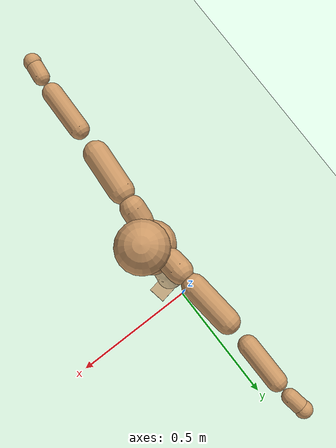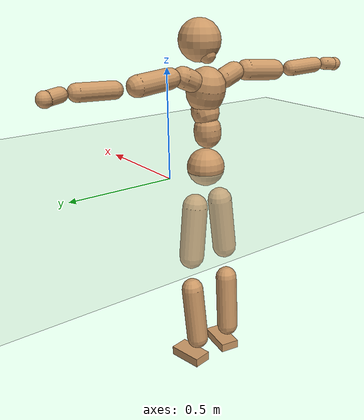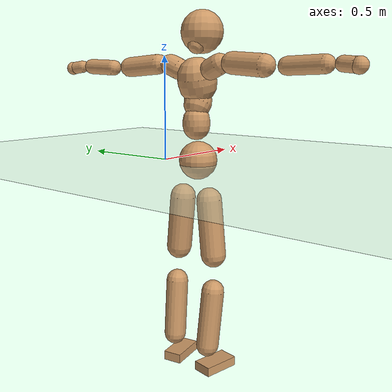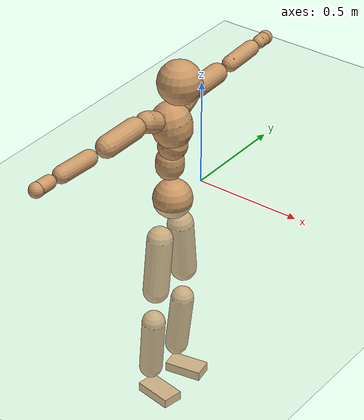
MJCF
<mujoco model="humanoid">
  <compiler coordinate="local" angle="radian"/>
  <default>
    <joint damping="0.0" armature="0.01" stiffness="0.0" limited="true"/>
    <geom conaffinity="1" condim="3" contype="7" margin="0.001" rgba="0.8 0.6 .4 1"/>
  </default>
  <asset>
    <texture type="skybox" builtin="gradient" rgb1=".4 .5 .6" rgb2="0 0 0" width="100" height="100"/>
    <texture builtin="flat" height="1278" mark="cross" markrgb="1 1 1" name="texgeom" random="0.01" rgb1="0.8 0.6 0.4" rgb2="0.8 0.6 0.4" type="cube" width="127"/>
    <texture builtin="checker" height="100" name="texplane" rgb1="0 0 0" rgb2="0.8 0.8 0.8" type="2d" width="100"/>
    <material name="MatPlane" reflectance="0.5" shininess="1" specular="1" texrepeat="60 60" texture="texplane"/>
    <material name="geom" texture="texgeom" texuniform="true"/>
  </asset>
  <worldbody>
    <light cutoff="100" diffuse="1 1 1" dir="-0 0 -1.3" directional="true" exponent="1" pos="0 0 1.3" specular=".1 .1 .1"/>
    <geom conaffinity="1" condim="3" name="floor" pos="0 0 0" rgba="0.8 0.9 0.8 1" size="100 100 .2" type="plane" material="MatPlane"/>
    <body name="Pelvis" pos="-0.001 -0.2063 0.0169">
      <freejoint name="Pelvis"/>
      <geom type="sphere" contype="1" conaffinity="1" density="500" size="0.0901" pos="0.0000 0.0000 0.0000" name="Pelvis"/>
      <body name="L_Hip" pos="-0.0167 0.0699 -0.0939">
        <joint name="L_Hip_x" type="hinge" pos="0 0 0" axis="1 0 0" stiffness="800" damping="80" armature="0.02" range="-180.0000 180.0000"/>
        <joint name="L_Hip_y" type="hinge" pos="0 0 0" axis="0 1 0" stiffness="800" damping="80" armature="0.02" range="-180.0000 180.0000"/>
        <joint name="L_Hip_z" type="hinge" pos="0 0 0" axis="0 0 1" stiffness="800" damping="80" armature="0.02" range="-180.0000 180.0000"/>
        <geom type="capsule" contype="1" conaffinity="1" density="500" fromto="-0.0001 0.0084 -0.0857 -0.0003 0.0335 -0.3427" size="0.0604" name="L_Hip"/>
        <body name="L_Knee" pos="-0.0004 0.0419 -0.4284">
          <joint name="L_Knee_x" type="hinge" pos="0 0 0" axis="1 0 0" stiffness="800" damping="80" armature="0.02" range="-180.0000 180.0000"/>
          <joint name="L_Knee_y" type="hinge" pos="0 0 0" axis="0 1 0" stiffness="800" damping="80" armature="0.02" range="-180.0000 180.0000"/>
          <joint name="L_Knee_z" type="hinge" pos="0 0 0" axis="0 0 1" stiffness="800" damping="80" armature="0.02" range="-180.0000 180.0000"/>
          <geom type="capsule" contype="1" conaffinity="1" density="500" fromto="-0.0095 -0.0028 -0.0911 -0.0378 -0.0112 -0.3643" size="0.0537" name="L_Knee"/>
          <body name="L_Ankle" pos="-0.0473 -0.014 -0.4554">
            <joint name="L_Ankle_x" type="hinge" pos="0 0 0" axis="1 0 0" stiffness="800" damping="80" armature="0.02" range="-180.0000 180.0000"/>
            <joint name="L_Ankle_y" type="hinge" pos="0 0 0" axis="0 1 0" stiffness="800" damping="80" armature="0.02" range="-180.0000 180.0000"/>
            <joint name="L_Ankle_z" type="hinge" pos="0 0 0" axis="0 0 1" stiffness="800" damping="80" armature="0.02" range="-180.0000 180.0000"/>
            <geom type="box" contype="1" conaffinity="1" density="500" pos="0.0628 0.0109 -0.0313" size="0.0876 0.0454 0.0226" quat="0.9963 0.0000 0.0000 0.0859" name="L_Ankle"/>
            <body name="L_Toe" pos="0.1256 0.0218 -0.0626">
              <joint name="L_Toe_x" type="hinge" pos="0 0 0" axis="1 0 0" stiffness="500" damping="50" armature="0.02" range="-180.0000 180.0000"/>
              <joint name="L_Toe_y" type="hinge" pos="0 0 0" axis="0 1 0" stiffness="500" damping="50" armature="0.02" range="-180.0000 180.0000"/>
              <joint name="L_Toe_z" type="hinge" pos="0 0 0" axis="0 0 1" stiffness="500" damping="50" armature="0.02" range="-180.0000 180.0000"/>
              <geom type="box" contype="1" conaffinity="1" density="500" pos="0.0000 0.0000 0.0306" size="0.0009 0.0023 0.0011" quat="0.9957 0.0000 0.0000 0.0921" name="L_Toe"/>
            </body>
          </body>
        </body>
      </body>
      <body name="R_Hip" pos="-0.0115 -0.0671 -0.0925">
        <joint name="R_Hip_x" type="hinge" pos="0 0 0" axis="1 0 0" stiffness="800" damping="80" armature="0.02" range="-180.0000 180.0000"/>
        <joint name="R_Hip_y" type="hinge" pos="0 0 0" axis="0 1 0" stiffness="800" damping="80" armature="0.02" range="-180.0000 180.0000"/>
        <joint name="R_Hip_z" type="hinge" pos="0 0 0" axis="0 0 1" stiffness="800" damping="80" armature="0.02" range="-180.0000 180.0000"/>
        <geom type="capsule" contype="1" conaffinity="1" density="500" fromto="-0.0008 -0.0098 -0.0872 -0.0031 -0.0391 -0.3487" size="0.0594" name="R_Hip"/>
        <body name="R_Knee" pos="-0.0039 -0.0489 -0.4359">
          <joint name="R_Knee_x" type="hinge" pos="0 0 0" axis="1 0 0" stiffness="800" damping="80" armature="0.02" range="-180.0000 180.0000"/>
          <joint name="R_Knee_y" type="hinge" pos="0 0 0" axis="0 1 0" stiffness="800" damping="80" armature="0.02" range="-180.0000 180.0000"/>
          <joint name="R_Knee_z" type="hinge" pos="0 0 0" axis="0 0 1" stiffness="800" damping="80" armature="0.02" range="-180.0000 180.0000"/>
          <geom type="capsule" contype="1" conaffinity="1" density="500" fromto="-0.0088 0.0036 -0.0909 -0.0353 0.0142 -0.3637" size="0.054" name="R_Knee"/>
          <body name="R_Ankle" pos="-0.0441 0.0178 -0.4547">
            <joint name="R_Ankle_x" type="hinge" pos="0 0 0" axis="1 0 0" stiffness="800" damping="80" armature="0.02" range="-180.0000 180.0000"/>
            <joint name="R_Ankle_y" type="hinge" pos="0 0 0" axis="0 1 0" stiffness="800" damping="80" armature="0.02" range="-180.0000 180.0000"/>
            <joint name="R_Ankle_z" type="hinge" pos="0 0 0" axis="0 0 1" stiffness="800" damping="80" armature="0.02" range="-180.0000 180.0000"/>
            <geom type="box" contype="1" conaffinity="1" density="500" pos="0.0646 -0.0114 -0.0269" size="0.0902 0.0478 0.0219" quat="0.9962 0.0000 0.0000 -0.0869" name="R_Ankle"/>
            <body name="R_Toe" pos="0.1293 -0.0227 -0.0537">
              <joint name="R_Toe_x" type="hinge" pos="0 0 0" axis="1 0 0" stiffness="500" damping="50" armature="0.02" range="-180.0000 180.0000"/>
              <joint name="R_Toe_y" type="hinge" pos="0 0 0" axis="0 1 0" stiffness="500" damping="50" armature="0.02" range="-180.0000 180.0000"/>
              <joint name="R_Toe_z" type="hinge" pos="0 0 0" axis="0 0 1" stiffness="500" damping="50" armature="0.02" range="-180.0000 180.0000"/>
              <geom type="box" contype="1" conaffinity="1" density="500" pos="0.0000 0.0000 0.0293" size="0.0009 0.0023 0.0012" quat="0.9969 0.0000 0.0000 -0.0782" name="R_Toe"/>
            </body>
          </body>
        </body>
      </body>
      <body name="Torso" pos="-0.0148 -0.0029 0.1073">
        <joint name="Torso_x" type="hinge" pos="0 0 0" axis="1 0 0" stiffness="1000" damping="100" armature="0.02" range="-180.0000 180.0000"/>
        <joint name="Torso_y" type="hinge" pos="0 0 0" axis="0 1 0" stiffness="1000" damping="100" armature="0.02" range="-180.0000 180.0000"/>
        <joint name="Torso_z" type="hinge" pos="0 0 0" axis="0 0 1" stiffness="1000" damping="100" armature="0.02" range="-180.0000 180.0000"/>
        <geom type="capsule" contype="1" conaffinity="1" density="500" fromto="0.0009 0.0024 0.0814 0.0006 0.0016 0.0543" size="0.0639" name="Torso"/>
        <body name="Spine" pos="0.0015 0.0041 0.1357">
          <joint name="Spine_x" type="hinge" pos="0 0 0" axis="1 0 0" stiffness="1000" damping="100" armature="0.02" range="-180.0000 180.0000"/>
          <joint name="Spine_y" type="hinge" pos="0 0 0" axis="0 1 0" stiffness="1000" damping="100" armature="0.02" range="-180.0000 180.0000"/>
          <joint name="Spine_z" type="hinge" pos="0 0 0" axis="0 0 1" stiffness="1000" damping="100" armature="0.02" range="-180.0000 180.0000"/>
          <geom type="capsule" contype="1" conaffinity="1" density="500" fromto="0.0153 0.0010 0.0305 0.0102 0.0007 0.0203" size="0.065" name="Spine"/>
          <body name="Chest" pos="0.0256 0.0016 0.0508">
            <joint name="Chest_x" type="hinge" pos="0 0 0" axis="1 0 0" stiffness="1000" damping="100" armature="0.02" range="-180.0000 180.0000"/>
            <joint name="Chest_y" type="hinge" pos="0 0 0" axis="0 1 0" stiffness="1000" damping="100" armature="0.02" range="-180.0000 180.0000"/>
            <joint name="Chest_z" type="hinge" pos="0 0 0" axis="0 0 1" stiffness="1000" damping="100" armature="0.02" range="-180.0000 180.0000"/>
            <geom type="capsule" contype="1" conaffinity="1" density="500" fromto="-0.0220 -0.0013 0.0901 -0.0147 -0.0008 0.0601" size="0.0902" name="Chest"/>
            <body name="Neck" pos="-0.0374 -0.0042 0.2173">
              <joint name="Neck_x" type="hinge" pos="0 0 0" axis="1 0 0" stiffness="500" damping="50" armature="0.02" range="-180.0000 180.0000"/>
              <joint name="Neck_y" type="hinge" pos="0 0 0" axis="0 1 0" stiffness="500" damping="50" armature="0.02" range="-180.0000 180.0000"/>
              <joint name="Neck_z" type="hinge" pos="0 0 0" axis="0 0 1" stiffness="500" damping="50" armature="0.02" range="-180.0000 180.0000"/>
              <geom type="capsule" contype="1" conaffinity="1" density="500" fromto="0.0116 0.0013 0.0148 0.0465 0.0052 0.0593" size="0.0405" name="Neck"/>
              <body name="Head" pos="0.0581 0.0065 0.0742">
                <joint name="Head_x" type="hinge" pos="0 0 0" axis="1 0 0" stiffness="500" damping="50" armature="0.02" range="-180.0000 180.0000"/>
                <joint name="Head_y" type="hinge" pos="0 0 0" axis="0 1 0" stiffness="500" damping="50" armature="0.02" range="-180.0000 180.0000"/>
                <joint name="Head_z" type="hinge" pos="0 0 0" axis="0 0 1" stiffness="500" damping="50" armature="0.02" range="-180.0000 180.0000"/>
                <geom type="sphere" contype="1" conaffinity="1" density="500" size="0.0981" pos="0.0000 0.0000 0.0000" name="Head"/>
              </body>
            </body>
            <body name="L_Thorax" pos="-0.0341 0.0734 0.1175">
              <joint name="L_Thorax_x" type="hinge" pos="0 0 0" axis="1 0 0" stiffness="500" damping="50" armature="0.02" range="-180.0000 180.0000"/>
              <joint name="L_Thorax_y" type="hinge" pos="0 0 0" axis="0 1 0" stiffness="500" damping="50" armature="0.02" range="-180.0000 180.0000"/>
              <joint name="L_Thorax_z" type="hinge" pos="0 0 0" axis="0 0 1" stiffness="500" damping="50" armature="0.02" range="-180.0000 180.0000"/>
              <geom type="capsule" contype="1" conaffinity="1" density="500" fromto="-0.0010 0.0166 0.0071 -0.0040 0.0664 0.0285" size="0.0487" name="L_Thorax"/>
              <body name="L_Shoulder" pos="-0.005 0.0831 0.0356">
                <joint name="L_Shoulder_x" type="hinge" pos="0 0 0" axis="1 0 0" stiffness="500" damping="50" armature="0.02" range="-720.0000 720.0000"/>
                <joint name="L_Shoulder_y" type="hinge" pos="0 0 0" axis="0 1 0" stiffness="500" damping="50" armature="0.02" range="-720.0000 720.0000"/>
                <joint name="L_Shoulder_z" type="hinge" pos="0 0 0" axis="0 0 1" stiffness="500" damping="50" armature="0.02" range="-720.0000 720.0000"/>
                <geom type="capsule" contype="1" conaffinity="1" density="500" fromto="-0.0057 0.0570 -0.0042 -0.0228 0.2282 -0.0168" size="0.0468" name="L_Shoulder"/>
                <body name="L_Elbow" pos="-0.0285 0.2852 -0.0211">
                  <joint name="L_Elbow_x" type="hinge" pos="0 0 0" axis="1 0 0" stiffness="500" damping="50" armature="0.02" range="-720.0000 720.0000"/>
                  <joint name="L_Elbow_y" type="hinge" pos="0 0 0" axis="0 1 0" stiffness="500" damping="50" armature="0.02" range="-720.0000 720.0000"/>
                  <joint name="L_Elbow_z" type="hinge" pos="0 0 0" axis="0 0 1" stiffness="500" damping="50" armature="0.02" range="-720.0000 720.0000"/>
                  <geom type="capsule" contype="1" conaffinity="1" density="500" fromto="-0.0003 0.0535 0.0024 -0.0013 0.2140 0.0097" size="0.0374" name="L_Elbow"/>
                  <body name="L_Wrist" pos="-0.0016 0.2674 0.0121">
                    <joint name="L_Wrist_x" type="hinge" pos="0 0 0" axis="1 0 0" stiffness="300" damping="30" armature="0.02" range="-180.0000 180.0000"/>
                    <joint name="L_Wrist_y" type="hinge" pos="0 0 0" axis="0 1 0" stiffness="300" damping="30" armature="0.02" range="-180.0000 180.0000"/>
                    <joint name="L_Wrist_z" type="hinge" pos="0 0 0" axis="0 0 1" stiffness="300" damping="30" armature="0.02" range="-180.0000 180.0000"/>
                    <geom type="capsule" contype="1" conaffinity="1" density="500" fromto="-0.0028 0.0164 -0.0021 -0.0112 0.0658 -0.0083" size="0.0304" name="L_Wrist"/>
                    <body name="L_Hand" pos="-0.014 0.0822 -0.0103">
                      <joint name="L_Hand_x" type="hinge" pos="0 0 0" axis="1 0 0" stiffness="300" damping="30" armature="0.02" range="-180.0000 180.0000"/>
                      <joint name="L_Hand_y" type="hinge" pos="0 0 0" axis="0 1 0" stiffness="300" damping="30" armature="0.02" range="-180.0000 180.0000"/>
                      <joint name="L_Hand_z" type="hinge" pos="0 0 0" axis="0 0 1" stiffness="300" damping="30" armature="0.02" range="-180.0000 180.0000"/>
                      <geom type="sphere" contype="1" conaffinity="1" density="500" size="0.0329" pos="0.0000 0.0000 0.0000" name="L_Hand"/>
                    </body>
                  </body>
                </body>
              </body>
            </body>
            <body name="R_Thorax" pos="-0.0385 -0.0755 0.1158">
              <joint name="R_Thorax_x" type="hinge" pos="0 0 0" axis="1 0 0" stiffness="500" damping="50" armature="0.02" range="-180.0000 180.0000"/>
              <joint name="R_Thorax_y" type="hinge" pos="0 0 0" axis="0 1 0" stiffness="500" damping="50" armature="0.02" range="-180.0000 180.0000"/>
              <joint name="R_Thorax_z" type="hinge" pos="0 0 0" axis="0 0 1" stiffness="500" damping="50" armature="0.02" range="-180.0000 180.0000"/>
              <geom type="capsule" contype="1" conaffinity="1" density="500" fromto="-0.0013 -0.0172 0.0075 -0.0050 -0.0689 0.0301" size="0.0474" name="R_Thorax"/>
              <body name="R_Shoulder" pos="-0.0063 -0.0861 0.0376">
                <joint name="R_Shoulder_x" type="hinge" pos="0 0 0" axis="1 0 0" stiffness="500" damping="50" armature="0.02" range="-720.0000 720.0000"/>
                <joint name="R_Shoulder_y" type="hinge" pos="0 0 0" axis="0 1 0" stiffness="500" damping="50" armature="0.02" range="-720.0000 720.0000"/>
                <joint name="R_Shoulder_z" type="hinge" pos="0 0 0" axis="0 0 1" stiffness="500" damping="50" armature="0.02" range="-720.0000 720.0000"/>
                <geom type="capsule" contype="1" conaffinity="1" density="500" fromto="-0.0042 -0.0553 -0.0041 -0.0169 -0.2210 -0.0164" size="0.0488" name="R_Shoulder"/>
                <body name="R_Elbow" pos="-0.0211 -0.2763 -0.0205">
                  <joint name="R_Elbow_x" type="hinge" pos="0 0 0" axis="1 0 0" stiffness="500" damping="50" armature="0.02" range="-720.0000 720.0000"/>
                  <joint name="R_Elbow_y" type="hinge" pos="0 0 0" axis="0 1 0" stiffness="500" damping="50" armature="0.02" range="-720.0000 720.0000"/>
                  <joint name="R_Elbow_z" type="hinge" pos="0 0 0" axis="0 0 1" stiffness="500" damping="50" armature="0.02" range="-720.0000 720.0000"/>
                  <geom type="capsule" contype="1" conaffinity="1" density="500" fromto="-0.0014 -0.0553 0.0018 -0.0057 -0.2212 0.0070" size="0.0378" name="R_Elbow"/>
                  <body name="R_Wrist" pos="-0.0071 -0.2765 0.0088">
                    <joint name="R_Wrist_x" type="hinge" pos="0 0 0" axis="1 0 0" stiffness="300" damping="30" armature="0.02" range="-180.0000 180.0000"/>
                    <joint name="R_Wrist_y" type="hinge" pos="0 0 0" axis="0 1 0" stiffness="300" damping="30" armature="0.02" range="-180.0000 180.0000"/>
                    <joint name="R_Wrist_z" type="hinge" pos="0 0 0" axis="0 0 1" stiffness="300" damping="30" armature="0.02" range="-180.0000 180.0000"/>
                    <geom type="capsule" contype="1" conaffinity="1" density="500" fromto="-0.0022 -0.0167 -0.0015 -0.0086 -0.0668 -0.0061" size="0.0313" name="R_Wrist"/>
                    <body name="R_Hand" pos="-0.0108 -0.0834 -0.0077">
                      <joint name="R_Hand_x" type="hinge" pos="0 0 0" axis="1 0 0" stiffness="300" damping="30" armature="0.02" range="-180.0000 180.0000"/>
                      <joint name="R_Hand_y" type="hinge" pos="0 0 0" axis="0 1 0" stiffness="300" damping="30" armature="0.02" range="-180.0000 180.0000"/>
                      <joint name="R_Hand_z" type="hinge" pos="0 0 0" axis="0 0 1" stiffness="300" damping="30" armature="0.02" range="-180.0000 180.0000"/>
                      <geom type="sphere" contype="1" conaffinity="1" density="500" size="0.0333" pos="0.0000 0.0000 0.0000" name="R_Hand"/>
                    </body>
                  </body>
                </body>
              </body>
            </body>
          </body>
        </body>
      </body>
    </body>
  </worldbody>
  <actuator>
    <motor name="L_Hip_x" joint="L_Hip_x" gear="500"/>
    <motor name="L_Hip_y" joint="L_Hip_y" gear="500"/>
    <motor name="L_Hip_z" joint="L_Hip_z" gear="500"/>
    <motor name="L_Knee_x" joint="L_Knee_x" gear="500"/>
    <motor name="L_Knee_y" joint="L_Knee_y" gear="500"/>
    <motor name="L_Knee_z" joint="L_Knee_z" gear="500"/>
    <motor name="L_Ankle_x" joint="L_Ankle_x" gear="500"/>
    <motor name="L_Ankle_y" joint="L_Ankle_y" gear="500"/>
    <motor name="L_Ankle_z" joint="L_Ankle_z" gear="500"/>
    <motor name="L_Toe_x" joint="L_Toe_x" gear="500"/>
    <motor name="L_Toe_y" joint="L_Toe_y" gear="500"/>
    <motor name="L_Toe_z" joint="L_Toe_z" gear="500"/>
    <motor name="R_Hip_x" joint="R_Hip_x" gear="500"/>
    <motor name="R_Hip_y" joint="R_Hip_y" gear="500"/>
    <motor name="R_Hip_z" joint="R_Hip_z" gear="500"/>
    <motor name="R_Knee_x" joint="R_Knee_x" gear="500"/>
    <motor name="R_Knee_y" joint="R_Knee_y" gear="500"/>
    <motor name="R_Knee_z" joint="R_Knee_z" gear="500"/>
    <motor name="R_Ankle_x" joint="R_Ankle_x" gear="500"/>
    <motor name="R_Ankle_y" joint="R_Ankle_y" gear="500"/>
    <motor name="R_Ankle_z" joint="R_Ankle_z" gear="500"/>
    <motor name="R_Toe_x" joint="R_Toe_x" gear="500"/>
    <motor name="R_Toe_y" joint="R_Toe_y" gear="500"/>
    <motor name="R_Toe_z" joint="R_Toe_z" gear="500"/>
    <motor name="Torso_x" joint="Torso_x" gear="500"/>
    <motor name="Torso_y" joint="Torso_y" gear="500"/>
    <motor name="Torso_z" joint="Torso_z" gear="500"/>
    <motor name="Spine_x" joint="Spine_x" gear="500"/>
    <motor name="Spine_y" joint="Spine_y" gear="500"/>
    <motor name="Spine_z" joint="Spine_z" gear="500"/>
    <motor name="Chest_x" joint="Chest_x" gear="500"/>
    <motor name="Chest_y" joint="Chest_y" gear="500"/>
    <motor name="Chest_z" joint="Chest_z" gear="500"/>
    <motor name="Neck_x" joint="Neck_x" gear="500"/>
    <motor name="Neck_y" joint="Neck_y" gear="500"/>
    <motor name="Neck_z" joint="Neck_z" gear="500"/>
    <motor name="Head_x" joint="Head_x" gear="500"/>
    <motor name="Head_y" joint="Head_y" gear="500"/>
    <motor name="Head_z" joint="Head_z" gear="500"/>
    <motor name="L_Thorax_x" joint="L_Thorax_x" gear="500"/>
    <motor name="L_Thorax_y" joint="L_Thorax_y" gear="500"/>
    <motor name="L_Thorax_z" joint="L_Thorax_z" gear="500"/>
    <motor name="L_Shoulder_x" joint="L_Shoulder_x" gear="500"/>
    <motor name="L_Shoulder_y" joint="L_Shoulder_y" gear="500"/>
    <motor name="L_Shoulder_z" joint="L_Shoulder_z" gear="500"/>
    <motor name="L_Elbow_x" joint="L_Elbow_x" gear="500"/>
    <motor name="L_Elbow_y" joint="L_Elbow_y" gear="500"/>
    <motor name="L_Elbow_z" joint="L_Elbow_z" gear="500"/>
    <motor name="L_Wrist_x" joint="L_Wrist_x" gear="500"/>
    <motor name="L_Wrist_y" joint="L_Wrist_y" gear="500"/>
    <motor name="L_Wrist_z" joint="L_Wrist_z" gear="500"/>
    <motor name="L_Hand_x" joint="L_Hand_x" gear="500"/>
    <motor name="L_Hand_y" joint="L_Hand_y" gear="500"/>
    <motor name="L_Hand_z" joint="L_Hand_z" gear="500"/>
    <motor name="R_Thorax_x" joint="R_Thorax_x" gear="500"/>
    <motor name="R_Thorax_y" joint="R_Thorax_y" gear="500"/>
    <motor name="R_Thorax_z" joint="R_Thorax_z" gear="500"/>
    <motor name="R_Shoulder_x" joint="R_Shoulder_x" gear="500"/>
    <motor name="R_Shoulder_y" joint="R_Shoulder_y" gear="500"/>
    <motor name="R_Shoulder_z" joint="R_Shoulder_z" gear="500"/>
    <motor name="R_Elbow_x" joint="R_Elbow_x" gear="500"/>
    <motor name="R_Elbow_y" joint="R_Elbow_y" gear="500"/>
    <motor name="R_Elbow_z" joint="R_Elbow_z" gear="500"/>
    <motor name="R_Wrist_x" joint="R_Wrist_x" gear="500"/>
    <motor name="R_Wrist_y" joint="R_Wrist_y" gear="500"/>
    <motor name="R_Wrist_z" joint="R_Wrist_z" gear="500"/>
    <motor name="R_Hand_x" joint="R_Hand_x" gear="500"/>
    <motor name="R_Hand_y" joint="R_Hand_y" gear="500"/>
    <motor name="R_Hand_z" joint="R_Hand_z" gear="500"/>
  </actuator>
  <contact>
    <exclude body1="Torso" body2="Chest"/>
    <exclude body1="Head" body2="Chest"/>
    <exclude body1="R_Knee" body2="R_Toe"/>
    <exclude body1="R_Knee" body2="L_Ankle"/>
    <exclude body1="R_Knee" body2="L_Toe"/>
    <exclude body1="L_Knee" body2="L_Toe"/>
    <exclude body1="L_Knee" body2="R_Ankle"/>
    <exclude body1="L_Knee" body2="R_Toe"/>
    <exclude body1="L_Shoulder" body2="Chest"/>
    <exclude body1="R_Shoulder" body2="Chest"/>
  </contact>
  <sensor/>
  <size njmax="700" nconmax="700"/>
</mujoco>
